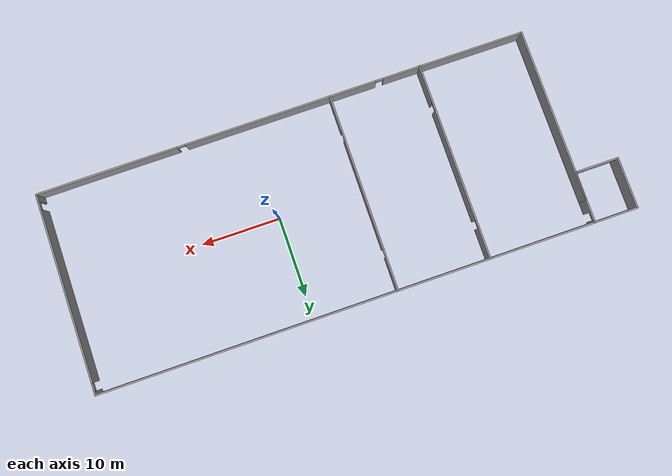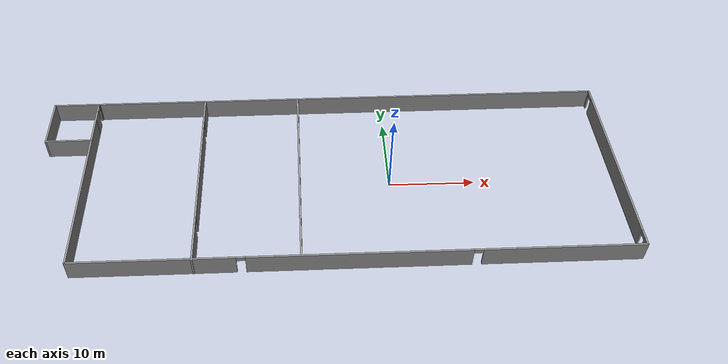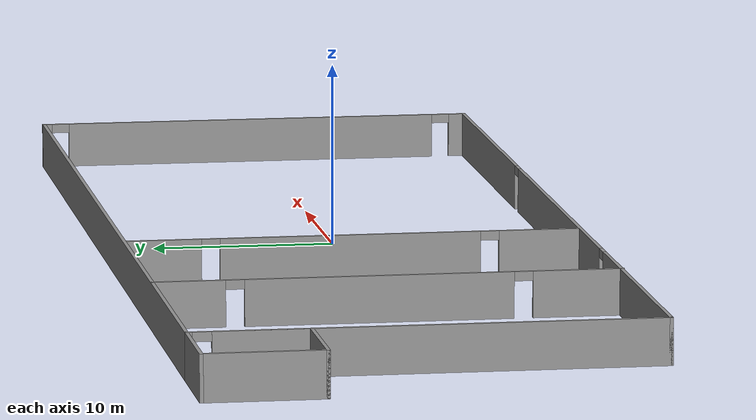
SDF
<?xml version='1.0'?>
<sdf version='1.4'>
  <model name='World'>
    <link name='Wall_0'>
      <collision name='Wall_0_Collision'>
        <geometry>
          <box>
            <size>22.1701 0.2 2.5</size>
          </box>
        </geometry>
        <pose>0 0 1.25 0 -0 0</pose>
      </collision>
      <visual name='Wall_0_Visual'>
        <pose>0 0 1.25 0 -0 0</pose>
        <geometry>
          <box>
            <size>22.1701 0.2 2.5</size>
          </box>
        </geometry>
        <material>
          <script>
            <uri>file://media/materials/scripts/gazebo.material</uri>
            <name>Gazebo/Grey</name>
          </script>
        </material>
      </visual>
      <velocity_decay>
        <linear>0</linear>
        <angular>0</angular>
      </velocity_decay>
      <pose>-35.591 -0.967818 0 0 0 -1.5708</pose>
    </link>
    <link name='Wall_1'>
      <pose>-4.46678 -11.9529 0 0 -0 0</pose>
      <visual name='Wall_1_Visual_0'>
        <pose>-22.1523 0 1.25 0 -0 0</pose>
        <geometry>
          <box>
            <size>18.1439 0.2 2.5</size>
          </box>
        </geometry>
        <material>
          <script>
            <uri>file://media/materials/scripts/gazebo.material</uri>
            <name>Gazebo/Grey</name>
          </script>
        </material>
      </visual>
      <collision name='Wall_1_Collision_0'>
        <geometry>
          <box>
            <size>18.1439 0.2 2.5</size>
          </box>
        </geometry>
        <pose>-22.1523 0 1.25 0 -0 0</pose>
      </collision>
      <visual name='Wall_1_Visual_1'>
        <pose>0.154174 0 1.25 0 -0 0</pose>
        <geometry>
          <box>
            <size>24.469 0.2 2.5</size>
          </box>
        </geometry>
        <material>
          <script>
            <uri>file://media/materials/scripts/gazebo.material</uri>
            <name>Gazebo/Grey</name>
          </script>
        </material>
      </visual>
      <collision name='Wall_1_Collision_1'>
        <geometry>
          <box>
            <size>24.469 0.2 2.5</size>
          </box>
        </geometry>
        <pose>0.154174 0 1.25 0 -0 0</pose>
      </collision>
      <visual name='Wall_1_Visual_2'>
        <pose>22.3065 0 1.25 0 -0 0</pose>
        <geometry>
          <box>
            <size>17.8356 0.2 2.5</size>
          </box>
        </geometry>
        <material>
          <script>
            <uri>file://media/materials/scripts/gazebo.material</uri>
            <name>Gazebo/Grey</name>
          </script>
        </material>
      </visual>
      <collision name='Wall_1_Collision_2'>
        <geometry>
          <box>
            <size>17.8356 0.2 2.5</size>
          </box>
        </geometry>
        <pose>22.3065 0 1.25 0 -0 0</pose>
      </collision>
      <visual name='Wall_1_Visual_3'>
        <pose>-12.5803 0 2.25 0 -0 0</pose>
        <geometry>
          <box>
            <size>1 0.2 0.5</size>
          </box>
        </geometry>
        <material>
          <script>
            <uri>file://media/materials/scripts/gazebo.material</uri>
            <name>Gazebo/Grey</name>
          </script>
        </material>
      </visual>
      <collision name='Wall_1_Collision_3'>
        <geometry>
          <box>
            <size>1 0.2 0.5</size>
          </box>
        </geometry>
        <pose>-12.5803 0 2.25 0 -0 0</pose>
      </collision>
      <visual name='Wall_1_Visual_4'>
        <pose>12.8887 0 2.25 0 -0 0</pose>
        <geometry>
          <box>
            <size>1 0.2 0.5</size>
          </box>
        </geometry>
        <material>
          <script>
            <uri>file://media/materials/scripts/gazebo.material</uri>
            <name>Gazebo/Grey</name>
          </script>
        </material>
      </visual>
      <collision name='Wall_1_Collision_4'>
        <geometry>
          <box>
            <size>1 0.2 0.5</size>
          </box>
        </geometry>
        <pose>12.8887 0 2.25 0 -0 0</pose>
      </collision>
    </link>
    <link name='Wall_10'>
      <pose>-22.2548 0.44629 0 0 0 -1.5708</pose>
      <visual name='Wall_10_Visual_0'>
        <pose>-10.5934 0 1.25 0 -0 0</pose>
        <geometry>
          <box>
            <size>3.91264 0.2 2.5</size>
          </box>
        </geometry>
        <material>
          <script>
            <uri>file://media/materials/scripts/gazebo.material</uri>
            <name>Gazebo/Grey</name>
          </script>
        </material>
      </visual>
      <collision name='Wall_10_Collision_0'>
        <geometry>
          <box>
            <size>3.91264 0.2 2.5</size>
          </box>
        </geometry>
        <pose>-10.5934 0 1.25 0 -0 0</pose>
      </collision>
      <visual name='Wall_10_Visual_1'>
        <pose>-0.488223 0 1.25 0 -0 0</pose>
        <geometry>
          <box>
            <size>14.2977 0.2 2.5</size>
          </box>
        </geometry>
        <material>
          <script>
            <uri>file://media/materials/scripts/gazebo.material</uri>
            <name>Gazebo/Grey</name>
          </script>
        </material>
      </visual>
      <collision name='Wall_10_Collision_1'>
        <geometry>
          <box>
            <size>14.2977 0.2 2.5</size>
          </box>
        </geometry>
        <pose>-0.488223 0 1.25 0 -0 0</pose>
      </collision>
      <visual name='Wall_10_Visual_2'>
        <pose>10.1052 0 1.25 0 -0 0</pose>
        <geometry>
          <box>
            <size>4.88909 0.2 2.5</size>
          </box>
        </geometry>
        <material>
          <script>
            <uri>file://media/materials/scripts/gazebo.material</uri>
            <name>Gazebo/Grey</name>
          </script>
        </material>
      </visual>
      <collision name='Wall_10_Collision_2'>
        <geometry>
          <box>
            <size>4.88909 0.2 2.5</size>
          </box>
        </geometry>
        <pose>10.1052 0 1.25 0 -0 0</pose>
      </collision>
      <visual name='Wall_10_Visual_3'>
        <pose>-8.13706 0 2.25 0 -0 0</pose>
        <geometry>
          <box>
            <size>1 0.2 0.5</size>
          </box>
        </geometry>
        <material>
          <script>
            <uri>file://media/materials/scripts/gazebo.material</uri>
            <name>Gazebo/Grey</name>
          </script>
        </material>
      </visual>
      <collision name='Wall_10_Collision_3'>
        <geometry>
          <box>
            <size>1 0.2 0.5</size>
          </box>
        </geometry>
        <pose>-8.13706 0 2.25 0 -0 0</pose>
      </collision>
      <visual name='Wall_10_Visual_4'>
        <pose>7.16061 0 2.25 0 -0 0</pose>
        <geometry>
          <box>
            <size>1 0.2 0.5</size>
          </box>
        </geometry>
        <material>
          <script>
            <uri>file://media/materials/scripts/gazebo.material</uri>
            <name>Gazebo/Grey</name>
          </script>
        </material>
      </visual>
      <collision name='Wall_10_Collision_4'>
        <geometry>
          <box>
            <size>1 0.2 0.5</size>
          </box>
        </geometry>
        <pose>7.16061 0 2.25 0 -0 0</pose>
      </collision>
    </link>
    <link name='Wall_12'>
      <pose>-10.6188 0.527661 0 0 0 -1.5708</pose>
      <visual name='Wall_12_Visual_0'>
        <pose>-10.3493 0 1.25 0 -0 0</pose>
        <geometry>
          <box>
            <size>4.23813 0.2 2.5</size>
          </box>
        </geometry>
        <material>
          <script>
            <uri>file://media/materials/scripts/gazebo.material</uri>
            <name>Gazebo/Grey</name>
          </script>
        </material>
      </visual>
      <collision name='Wall_12_Collision_0'>
        <geometry>
          <box>
            <size>4.23813 0.2 2.5</size>
          </box>
        </geometry>
        <pose>-10.3493 0 1.25 0 -0 0</pose>
      </collision>
      <visual name='Wall_12_Visual_1'>
        <pose>-0.122056 0 1.25 0 -0 0</pose>
        <geometry>
          <box>
            <size>14.2163 0.2 2.5</size>
          </box>
        </geometry>
        <material>
          <script>
            <uri>file://media/materials/scripts/gazebo.material</uri>
            <name>Gazebo/Grey</name>
          </script>
        </material>
      </visual>
      <collision name='Wall_12_Collision_1'>
        <geometry>
          <box>
            <size>14.2163 0.2 2.5</size>
          </box>
        </geometry>
        <pose>-0.122056 0 1.25 0 -0 0</pose>
      </collision>
      <visual name='Wall_12_Visual_2'>
        <pose>10.2272 0 1.25 0 -0 0</pose>
        <geometry>
          <box>
            <size>4.48224 0.2 2.5</size>
          </box>
        </geometry>
        <material>
          <script>
            <uri>file://media/materials/scripts/gazebo.material</uri>
            <name>Gazebo/Grey</name>
          </script>
        </material>
      </visual>
      <collision name='Wall_12_Collision_2'>
        <geometry>
          <box>
            <size>4.48224 0.2 2.5</size>
          </box>
        </geometry>
        <pose>10.2272 0 1.25 0 -0 0</pose>
      </collision>
      <visual name='Wall_12_Visual_3'>
        <pose>-7.73021 0 2.25 0 -0 0</pose>
        <geometry>
          <box>
            <size>1 0.2 0.5</size>
          </box>
        </geometry>
        <material>
          <script>
            <uri>file://media/materials/scripts/gazebo.material</uri>
            <name>Gazebo/Grey</name>
          </script>
        </material>
      </visual>
      <collision name='Wall_12_Collision_3'>
        <geometry>
          <box>
            <size>1 0.2 0.5</size>
          </box>
        </geometry>
        <pose>-7.73021 0 2.25 0 -0 0</pose>
      </collision>
      <visual name='Wall_12_Visual_4'>
        <pose>7.4861 0 2.25 0 -0 0</pose>
        <geometry>
          <box>
            <size>1 0.2 0.5</size>
          </box>
        </geometry>
        <material>
          <script>
            <uri>file://media/materials/scripts/gazebo.material</uri>
            <name>Gazebo/Grey</name>
          </script>
        </material>
      </visual>
      <collision name='Wall_12_Collision_4'>
        <geometry>
          <box>
            <size>1 0.2 0.5</size>
          </box>
        </geometry>
        <pose>7.4861 0 2.25 0 -0 0</pose>
      </collision>
    </link>
    <link name='Wall_2'>
      <pose>26.6575 0.496853 0 0 -0 1.5708</pose>
      <visual name='Wall_2_Visual_0'>
        <pose>-12.0427 0 1.25 0 -0 0</pose>
        <geometry>
          <box>
            <size>1.01411 0.2 2.5</size>
          </box>
        </geometry>
        <material>
          <script>
            <uri>file://media/materials/scripts/gazebo.material</uri>
            <name>Gazebo/Grey</name>
          </script>
        </material>
      </visual>
      <collision name='Wall_2_Collision_0'>
        <geometry>
          <box>
            <size>1.01411 0.2 2.5</size>
          </box>
        </geometry>
        <pose>-12.0427 0 1.25 0 -0 0</pose>
      </collision>
      <visual name='Wall_2_Visual_1'>
        <pose>0.234234 0 1.25 0 -0 0</pose>
        <geometry>
          <box>
            <size>21.5397 0.2 2.5</size>
          </box>
        </geometry>
        <material>
          <script>
            <uri>file://media/materials/scripts/gazebo.material</uri>
            <name>Gazebo/Grey</name>
          </script>
        </material>
      </visual>
      <collision name='Wall_2_Collision_1'>
        <geometry>
          <box>
            <size>21.5397 0.2 2.5</size>
          </box>
        </geometry>
        <pose>0.234234 0 1.25 0 -0 0</pose>
      </collision>
      <visual name='Wall_2_Visual_2'>
        <pose>12.2769 0 1.25 0 -0 0</pose>
        <geometry>
          <box>
            <size>0.54564 0.2 2.5</size>
          </box>
        </geometry>
        <material>
          <script>
            <uri>file://media/materials/scripts/gazebo.material</uri>
            <name>Gazebo/Grey</name>
          </script>
        </material>
      </visual>
      <collision name='Wall_2_Collision_2'>
        <geometry>
          <box>
            <size>0.54564 0.2 2.5</size>
          </box>
        </geometry>
        <pose>12.2769 0 1.25 0 -0 0</pose>
      </collision>
      <visual name='Wall_2_Visual_3'>
        <pose>-11.0356 0 2.25 0 -0 0</pose>
        <geometry>
          <box>
            <size>1 0.2 0.5</size>
          </box>
        </geometry>
        <material>
          <script>
            <uri>file://media/materials/scripts/gazebo.material</uri>
            <name>Gazebo/Grey</name>
          </script>
        </material>
      </visual>
      <collision name='Wall_2_Collision_3'>
        <geometry>
          <box>
            <size>1 0.2 0.5</size>
          </box>
        </geometry>
        <pose>-11.0356 0 2.25 0 -0 0</pose>
      </collision>
      <visual name='Wall_2_Visual_4'>
        <pose>11.5041 0 2.25 0 -0 0</pose>
        <geometry>
          <box>
            <size>1 0.2 0.5</size>
          </box>
        </geometry>
        <material>
          <script>
            <uri>file://media/materials/scripts/gazebo.material</uri>
            <name>Gazebo/Grey</name>
          </script>
        </material>
      </visual>
      <collision name='Wall_2_Collision_4'>
        <geometry>
          <box>
            <size>1 0.2 0.5</size>
          </box>
        </geometry>
        <pose>11.5041 0 2.25 0 -0 0</pose>
      </collision>
    </link>
    <link name='Wall_3'>
      <collision name='Wall_3_Collision'>
        <geometry>
          <box>
            <size>62.3757 0.2 2.5</size>
          </box>
        </geometry>
        <pose>0 0 1.25 0 -0 0</pose>
      </collision>
      <visual name='Wall_3_Visual'>
        <pose>0 0 1.25 0 -0 0</pose>
        <geometry>
          <box>
            <size>62.3757 0.2 2.5</size>
          </box>
        </geometry>
        <material>
          <script>
            <uri>file://media/materials/scripts/gazebo.material</uri>
            <name>Gazebo/Grey</name>
          </script>
        </material>
      </visual>
      <velocity_decay>
        <linear>0</linear>
        <angular>0</angular>
      </velocity_decay>
      <pose>-4.43038 12.9466 0 0 -0 3.14159</pose>
    </link>
    <link name='Wall_4'>
      <collision name='Wall_4_Collision'>
        <geometry>
          <box>
            <size>5.7332 0.2 2.5</size>
          </box>
        </geometry>
        <pose>0 0 1.25 0 -0 0</pose>
      </collision>
      <visual name='Wall_4_Visual'>
        <pose>0 0 1.25 0 -0 0</pose>
        <geometry>
          <box>
            <size>5.7332 0.2 2.5</size>
          </box>
        </geometry>
        <material>
          <script>
            <uri>file://media/materials/scripts/gazebo.material</uri>
            <name>Gazebo/Grey</name>
          </script>
        </material>
      </visual>
      <velocity_decay>
        <linear>0</linear>
        <angular>0</angular>
      </velocity_decay>
      <pose>-38.2848 12.9466 0 0 -0 3.14159</pose>
    </link>
    <link name='Wall_5'>
      <collision name='Wall_5_Collision'>
        <geometry>
          <box>
            <size>6.59747 0.2 2.5</size>
          </box>
        </geometry>
        <pose>0 0 1.25 0 -0 0</pose>
      </collision>
      <visual name='Wall_5_Visual'>
        <pose>0 0 1.25 0 -0 0</pose>
        <geometry>
          <box>
            <size>6.59747 0.2 2.5</size>
          </box>
        </geometry>
        <material>
          <script>
            <uri>file://media/materials/scripts/gazebo.material</uri>
            <name>Gazebo/Grey</name>
          </script>
        </material>
      </visual>
      <velocity_decay>
        <linear>0</linear>
        <angular>0</angular>
      </velocity_decay>
      <pose>-41.0514 9.74782 0 0 0 -1.5708</pose>
    </link>
    <link name='Wall_6'>
      <collision name='Wall_6_Collision'>
        <geometry>
          <box>
            <size>5.65183 0.2 2.5</size>
          </box>
        </geometry>
        <pose>0 0 1.25 0 -0 0</pose>
      </collision>
      <visual name='Wall_6_Visual'>
        <pose>0 0 1.25 0 -0 0</pose>
        <geometry>
          <box>
            <size>5.65183 0.2 2.5</size>
          </box>
        </geometry>
        <material>
          <script>
            <uri>file://media/materials/scripts/gazebo.material</uri>
            <name>Gazebo/Grey</name>
          </script>
        </material>
      </visual>
      <velocity_decay>
        <linear>0</linear>
        <angular>0</angular>
      </velocity_decay>
      <pose>-38.3255 6.54909 0 0 -0 0</pose>
    </link>
    <link name='Wall_7'>
      <pose>-35.5996 9.72254 0 0 -0 1.5708</pose>
      <visual name='Wall_7_Visual_0'>
        <pose>-0.666167 0 1.25 0 -0 0</pose>
        <geometry>
          <box>
            <size>5.21457 0.2 2.5</size>
          </box>
        </geometry>
        <material>
          <script>
            <uri>file://media/materials/scripts/gazebo.material</uri>
            <name>Gazebo/Grey</name>
          </script>
        </material>
      </visual>
      <collision name='Wall_7_Collision_0'>
        <geometry>
          <box>
            <size>5.21457 0.2 2.5</size>
          </box>
        </geometry>
        <pose>-0.666167 0 1.25 0 -0 0</pose>
      </collision>
      <visual name='Wall_7_Visual_1'>
        <pose>3.10729 0 1.25 0 -0 0</pose>
        <geometry>
          <box>
            <size>0.332335 0.2 2.5</size>
          </box>
        </geometry>
        <material>
          <script>
            <uri>file://media/materials/scripts/gazebo.material</uri>
            <name>Gazebo/Grey</name>
          </script>
        </material>
      </visual>
      <collision name='Wall_7_Collision_1'>
        <geometry>
          <box>
            <size>0.332335 0.2 2.5</size>
          </box>
        </geometry>
        <pose>3.10729 0 1.25 0 -0 0</pose>
      </collision>
      <visual name='Wall_7_Visual_2'>
        <pose>2.44112 0 2.25 0 -0 0</pose>
        <geometry>
          <box>
            <size>1 0.2 0.5</size>
          </box>
        </geometry>
        <material>
          <script>
            <uri>file://media/materials/scripts/gazebo.material</uri>
            <name>Gazebo/Grey</name>
          </script>
        </material>
      </visual>
      <collision name='Wall_7_Collision_2'>
        <geometry>
          <box>
            <size>1 0.2 0.5</size>
          </box>
        </geometry>
        <pose>2.44112 0 2.25 0 -0 0</pose>
      </collision>
    </link>
    <static>1</static>
  </model>
</sdf>
